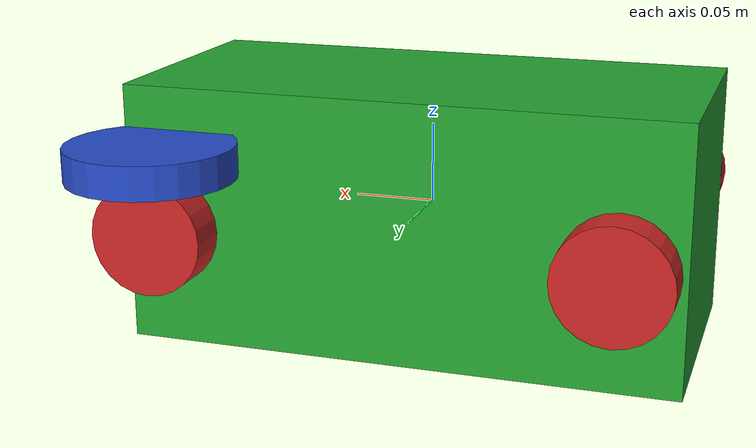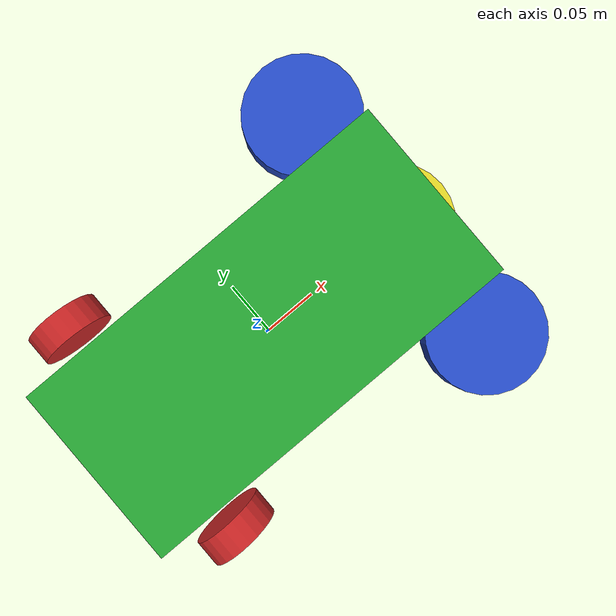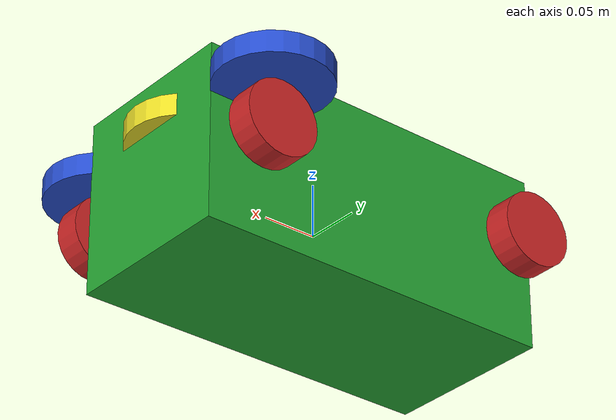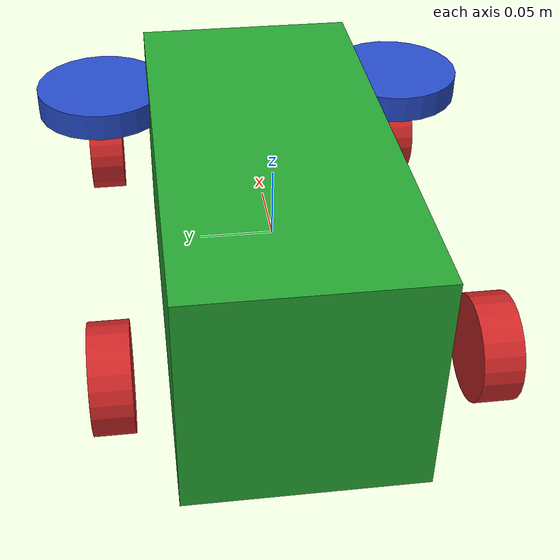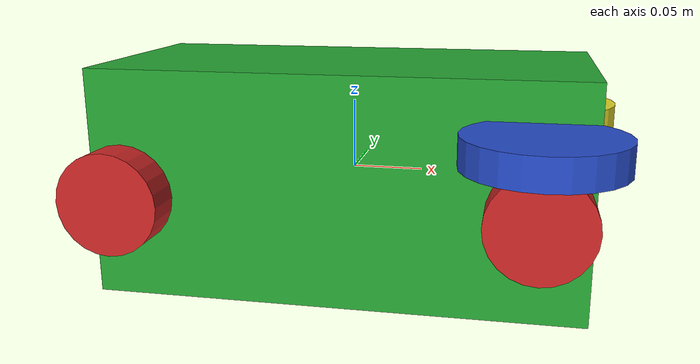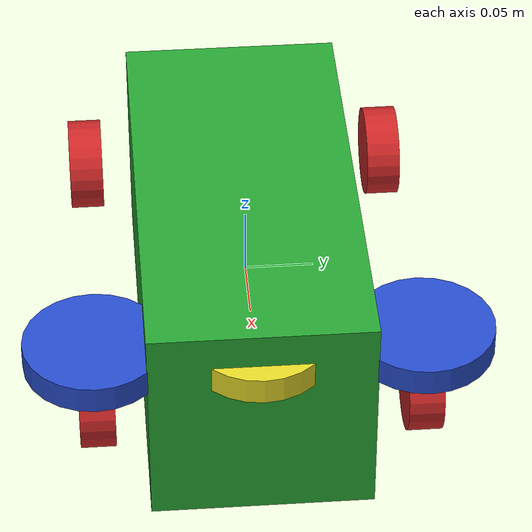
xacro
<?xml version="1.0"?>
<robot name="fennec" xmlns:xacro="http://wiki.ros.org/xacro">
  <!-- Include xacro for inertials, materials and wheels -->
  <xacro:include filename="$(find jetson_racer)/urdf/wheel.xacro"/>

  <!-- Gazebo plugins -->
  <gazebo>
    <plugin name="gazebo_ros_control" filename="libgazebo_ros_control.so">
    </plugin>
  </gazebo>

  <!-- Math constants -->
  <xacro:property name="deg_to_rad" value="0.01745329251994329577"/>

  <!-- Robot base dimensions -->
  <xacro:property name="base_length" value="0.34" />
  <xacro:property name="base_width" value="0.16" />
  <xacro:property name="base_height" value="0.16" />
  <xacro:property name="base_mass" value="5" />

  <!-- Wheel link dimensions -->
  <xacro:property name="wheel_radius" value="0.034" />
  <xacro:property name="wheel_thickness" value="0.025" />
  <xacro:property name="wheel_mass" value="1" />

  <!-- Steering link dimensions -->
  <xacro:property name="steer_radius" value="0.05" />
  <xacro:property name="steer_thickness" value="0.02" />
  <xacro:property name="steer_mass" value="1" />

  <!-- Axle positions -->
  <xacro:property name="axle_offset" value="0.035" />
  <xacro:property name="steer_offset" value="0.01" />

  <!-- Base link -->
  <link name="base_link">
    <visual>
      <origin xyz="0 0 0" rpy="0 0 0"/>
      <geometry>
        <box size="${base_length} ${base_width} ${base_height}"/>
      </geometry>
      <material name="green" />
    </visual>
    <collision>
      <origin xyz="0 0 0" rpy="0 0 0"/>
      <geometry>
        <box size="${base_length} ${base_width} ${base_height}"/>
      </geometry>
    </collision>
    <xacro:solid_cuboid_inertial
        rpy="0 0 0" xyz="0 0 0"
        mass="${base_mass}"
        x="${base_length}" y="${base_width}" z="${base_height}" />
  </link>

  <!-- Front steer and rear wheel joints required for ackermann_steering_controller -->
  <xacro:front_steer
    name="front"
    parent="base"
    steer_radius="${steer_radius}"
    steer_thickness="${steer_thickness}"
    steer_mass="${steer_mass}"
    base_length="${base_length}"
    base_width="${base_width}"
    axle_offset="${axle_offset}"
    steer_height="${wheel_radius+steer_offset}">
  </xacro:front_steer>

  <xacro:rear_wheel
    name="rear"
    parent="base"
    wheel_radius="${wheel_radius/4}"
    wheel_thickness="${wheel_thickness/2}"
    wheel_mass="${wheel_mass/32}">
    <origin xyz="${-base_length/2+axle_offset} 0 0" rpy="${-90 * deg_to_rad} 0 0"/>
  </xacro:rear_wheel>

  <!-- Steerable front wheels -->
  <xacro:front_wheel_lr
    name="front_right"
    parent="base"
    reflect="-1"
    wheel_radius="${wheel_radius}"
    wheel_thickness="${wheel_thickness}"
    wheel_mass="${wheel_mass}"
    steer_radius="${steer_radius}"
    steer_thickness="${steer_thickness}"
    steer_mass="${steer_mass}"
    base_length="${base_length}"
    base_width="${base_width}"
    axle_offset="${axle_offset}"
    steer_height="${wheel_radius+steer_offset}">
  </xacro:front_wheel_lr>
  <xacro:front_wheel_lr
    name="front_left"
    parent="base"
    reflect="1"
    wheel_radius="${wheel_radius}"
    wheel_thickness="${wheel_thickness}"
    wheel_mass="${wheel_mass}"
    steer_radius="${steer_radius}"
    steer_thickness="${steer_thickness}"
    steer_mass="${steer_mass}"
    base_length="${base_length}"
    base_width="${base_width}"
    axle_offset="${axle_offset}"
    steer_height="${wheel_radius+steer_offset}">
  </xacro:front_wheel_lr>

  <!-- Rear wheels -->
  <xacro:rear_wheel_lr
    name="rear_right"
    parent="base"
    wheel_radius="${wheel_radius}"
    wheel_thickness="${wheel_thickness}"
    wheel_mass="${wheel_mass}">
    <origin xyz="${-base_length/2+axle_offset} ${-base_width/2-axle_offset} 0" rpy="${-90 * deg_to_rad} 0 0"/>
  </xacro:rear_wheel_lr>
  <xacro:rear_wheel_lr
    name="rear_left"
    parent="base"
    wheel_radius="${wheel_radius}"
    wheel_thickness="${wheel_thickness}"
    wheel_mass="${wheel_mass}">
    <origin xyz="${-base_length/2+axle_offset} ${+base_width/2+axle_offset} 0" rpy="${-90 * deg_to_rad} 0 0"/>
  </xacro:rear_wheel_lr>

  <!-- Colour -->
  <gazebo reference="base_link">
    <material>Gazebo/Green</material>
  </gazebo>

</robot>

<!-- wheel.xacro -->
<!--
  Robot model adapted from https://github.com/CIR-KIT/steer_drive_ros/blob/kinetic-devel/steer_drive_controller/test/common/urdf/wheel.xacro

-->
<robot name="wheel" xmlns:xacro="http://wiki.ros.org/xacro">
  <!-- Include xacro for materials and inertials -->
  <xacro:include filename="$(find jetson_racer)/urdf/materials.xacro"/>
  <xacro:include filename="$(find jetson_racer)/urdf/inertials.xacro"/>

  <!-- Properties -->
  <xacro:property name="steer_effort" value="10.0"/>
  <xacro:property name="steer_velocity" value="5.0"/>
  <xacro:property name="steer_limit_deg" value="45.0"/>

  <!-- Bicycle model front steering link (required for steer_drive_controller) -->
  <xacro:macro name="front_steer"
    params="
      name
      parent
      steer_radius
      steer_thickness
      steer_mass
      base_length
      base_width
      axle_offset
      steer_height">
    <link name="${name}_steer_link">
      <visual>
        <origin xyz="0 0 0" rpy="0 0 0"/>
        <geometry>
          <cylinder radius="${steer_radius}" length="${steer_thickness}"/>
        </geometry>
        <material name="yellow" />
      </visual>
      <collision>
        <origin xyz="0 0 0" rpy="0 0 0"/>
        <geometry>
          <cylinder radius="${steer_radius}" length="${steer_thickness}"/>
        </geometry>
      </collision>
      <xacro:solid_cylinder_inertial
          rpy="0 0 0" xyz="0 0 0"
          mass="${steer_mass}"
          radius="${steer_radius}" length="${steer_thickness}" />
    </link>

    <joint name="${name}_steer_joint" type="revolute">
      <parent link="${parent}_link"/>
      <child link="${name}_steer_link"/>
      <origin xyz="${base_length/2-axle_offset} 0 ${steer_height}" rpy="0 0 0"/>
      <axis xyz="0 0 1"/>
      <limit effort="${steer_effort}"
             lower="${-180.0 * deg_to_rad}" upper="${180.0 * deg_to_rad}"
             velocity="${steer_velocity}"/>
    </joint>

    <transmission name="${name}_steer_joint_trans">
      <type>transmission_interface/SimpleTransmission</type>
      <actuator name="${name}_steer_joint_motor">
        <mechanicalReduction>1</mechanicalReduction>
        <hardwareInterface>hardware_interface/PositionJointInterface</hardwareInterface>
      </actuator>
      <joint name="${name}_steer_joint">
        <hardwareInterface>hardware_interface/PositionJointInterface</hardwareInterface>
      </joint>
    </transmission>

    <gazebo reference="${name}_steer_link">
      <material>Gazebo/Yellow</material>
    </gazebo>
  </xacro:macro>

  <!-- Car steering model front (steerable) wheel links (left/right) -->
  <xacro:macro name="front_wheel_lr"
    params="
      name
      parent
      reflect
      wheel_radius
      wheel_thickness
      wheel_mass
      steer_radius
      steer_thickness
      steer_mass
      base_length
      base_width
      axle_offset
      steer_height">
    <link name="${name}_steer_link">
      <visual>
        <origin xyz="0 0 0" rpy="0 0 0"/>
        <geometry>
          <cylinder radius="${steer_radius}" length="${steer_thickness}"/>
        </geometry>
        <material name="blue" />
      </visual>
      <collision>
        <origin xyz="0 0 0" rpy="0 0 0"/>
        <geometry>
          <cylinder radius="${steer_radius}" length="${steer_thickness}"/>
        </geometry>
      </collision>
      <xacro:solid_cylinder_inertial
          rpy="0 0 0" xyz="0 0 0"
          mass="${steer_mass}"
          radius="${steer_radius}" length="${steer_thickness}" />
    </link>

    <joint name="${name}_steer_joint" type="revolute">
      <parent link="${parent}_link"/>
      <child link="${name}_steer_link"/>
      <origin xyz="${base_length/2-axle_offset} ${reflect*(base_width/2+axle_offset)} ${steer_height}" rpy="0 0 0"/>
      <axis xyz="0 0 1"/>
      <limit effort="${steer_effort}"
             lower="${steer_limit_deg * deg_to_rad * -1.0}" upper="${steer_limit_deg * deg_to_rad}"
             velocity="${steer_velocity}"/>
    </joint>

    <link name="${name}_wheel_link">
      <visual>
        <origin xyz="0 0 0" rpy="0 0 0"/>
        <geometry>
          <cylinder radius="${wheel_radius}" length="${wheel_thickness}"/>
        </geometry>
        <material name="red" />
      </visual>
      <collision>
        <origin xyz="0 0 0" rpy="0 0 0"/>
        <geometry>
          <cylinder radius="${wheel_radius}" length="${wheel_thickness}"/>
        </geometry>
      </collision>
      <xacro:solid_cylinder_inertial
          rpy="0 0 0" xyz="0 0 0"
          mass="${wheel_mass}"
          radius="${wheel_radius}" length="${wheel_thickness}" />
    </link>

    <joint name="${name}_wheel_joint" type="continuous">
      <parent link="${name}_steer_link"/>
      <child link="${name}_wheel_link"/>
      <origin xyz="0 0 ${-steer_height}" rpy="${-90 * deg_to_rad} 0 0"/>
      <axis xyz="0 0 1"/>
    </joint>

    <transmission name="${name}_steer_joint_trans">
      <type>transmission_interface/SimpleTransmission</type>
      <actuator name="${name}_steer_joint_motor">
        <mechanicalReduction>1</mechanicalReduction>
        <hardwareInterface>hardware_interface/PositionJointInterface</hardwareInterface>
      </actuator>
      <joint name="${name}_steer_joint">
        <hardwareInterface>hardware_interface/PositionJointInterface</hardwareInterface>
      </joint>
    </transmission>

    <transmission name="${name}_wheel_joint_trans">
      <type>transmission_interface/SimpleTransmission</type>
      <actuator name="${name}_wheel_joint_motor">
        <mechanicalReduction>1</mechanicalReduction>
        <hardwareInterface>hardware_interface/VelocityJointInterface</hardwareInterface>
      </actuator>
      <joint name="${name}_wheel_joint">
        <hardwareInterface>hardware_interface/VelocityJointInterface</hardwareInterface>
      </joint>
    </transmission>

    <gazebo reference="${name}_steer_link">
      <material>Gazebo/Blue</material>
    </gazebo>

    <gazebo reference="${name}_wheel_link">
      <material>Gazebo/Red</material>
    </gazebo>
  </xacro:macro>

  <!-- Bicycle model rear wheel link (required for steer_drive_controller) -->
  <xacro:macro name="rear_wheel"
    params="
      name
      parent
      wheel_radius
      wheel_thickness
      wheel_mass
      *origin">
    <link name="${name}_wheel_link">
      <visual>
        <origin xyz="0 0 0" rpy="0 0 0"/>
        <geometry>
          <cylinder radius="${wheel_radius}" length="${wheel_thickness}"/>
        </geometry>
        <material name="yellow" />
      </visual>
      <collision>
        <origin xyz="0 0 0" rpy="0 0 0"/>
        <geometry>
          <cylinder radius="${wheel_radius}" length="${wheel_thickness}"/>
        </geometry>
      </collision>
      <xacro:solid_cylinder_inertial
          rpy="0 0 0" xyz="0 0 0"
          mass="${wheel_mass}"
          radius="${wheel_radius}" length="${wheel_thickness}" />
    </link>

    <joint name="${name}_wheel_joint" type="continuous">
      <parent link="${parent}_link"/>
      <child link="${name}_wheel_link"/>
      <xacro:insert_block name="origin"/>
      <axis xyz="0 0 1"/>
    </joint>

    <transmission name="${name}_wheel_joint_trans">
      <type>transmission_interface/SimpleTransmission</type>
      <actuator name="${name}_wheel_joint_motor">
        <mechanicalReduction>1</mechanicalReduction>
        <hardwareInterface>hardware_interface/VelocityJointInterface</hardwareInterface>
      </actuator>
      <joint name="${name}_wheel_joint">
        <hardwareInterface>hardware_interface/VelocityJointInterface</hardwareInterface>
      </joint>
    </transmission>

    <gazebo reference="${name}_wheel_link">
      <material>Gazebo/Yellow</material>
    </gazebo>
  </xacro:macro>

  <!-- Bicycle model front wheel link (passive - no transmission) -->
  <xacro:macro name="front_wheel"
    params="
      name
      parent
      wheel_radius
      wheel_thickness
      wheel_mass
      *origin">
    <link name="${name}_wheel_link">
      <visual>
        <origin xyz="0 0 0" rpy="0 0 0"/>
        <geometry>
          <cylinder radius="${wheel_radius}" length="${wheel_thickness}"/>
        </geometry>
        <material name="yellow" />
      </visual>
      <collision>
        <origin xyz="0 0 0" rpy="0 0 0"/>
        <geometry>
          <cylinder radius="${wheel_radius}" length="${wheel_thickness}"/>
        </geometry>
      </collision>
      <xacro:solid_cylinder_inertial
          rpy="0 0 0" xyz="0 0 0"
          mass="${wheel_mass}"
          radius="${wheel_radius}" length="${wheel_thickness}" />
    </link>

    <joint name="${name}_wheel_joint" type="continuous">
      <parent link="${parent}_link"/>
      <child link="${name}_wheel_link"/>
      <xacro:insert_block name="origin"/>
      <axis xyz="0 0 1"/>
    </joint>

    <gazebo reference="${name}_wheel_link">
      <material>Gazebo/Yellow</material>
    </gazebo>

    <gazebo reference="${name}_wheel_joint">
      <provideFeedback>true</provideFeedback>
    </gazebo>
  </xacro:macro>

  <!-- Car steering model rear wheel links (left/right) -->
  <xacro:macro name="rear_wheel_lr"
    params="
      name
      parent
      wheel_radius
      wheel_thickness
      wheel_mass
      *origin">
    <link name="${name}_wheel_link">
      <visual>
        <origin xyz="0 0 0" rpy="0 0 0"/>
        <geometry>
          <cylinder radius="${wheel_radius}" length="${wheel_thickness}"/>
        </geometry>
        <material name="red" />
      </visual>
      <collision>
        <origin xyz="0 0 0" rpy="0 0 0"/>
        <geometry>
          <cylinder radius="${wheel_radius}" length="${wheel_thickness}"/>
        </geometry>
      </collision>
      <xacro:solid_cylinder_inertial
          rpy="0 0 0" xyz="0 0 0"
          mass="${wheel_mass}"
          radius="${wheel_radius}" length="${wheel_thickness}" />
    </link>

    <joint name="${name}_wheel_joint" type="continuous">
      <parent link="${parent}_link"/>
      <child link="${name}_wheel_link"/>
      <xacro:insert_block name="origin"/>
      <axis xyz="0 0 1"/>
    </joint>

    <transmission name="${name}_wheel_joint_trans">
      <type>transmission_interface/SimpleTransmission</type>
      <actuator name="${name}_wheel_joint_motor">
        <mechanicalReduction>1</mechanicalReduction>
        <hardwareInterface>hardware_interface/VelocityJointInterface</hardwareInterface>
      </actuator>
      <joint name="${name}_wheel_joint">
        <hardwareInterface>hardware_interface/VelocityJointInterface</hardwareInterface>
      </joint>
    </transmission>

    <gazebo reference="${name}_wheel_link">
      <material>Gazebo/Red</material>
    </gazebo>
  </xacro:macro>
</robot>
